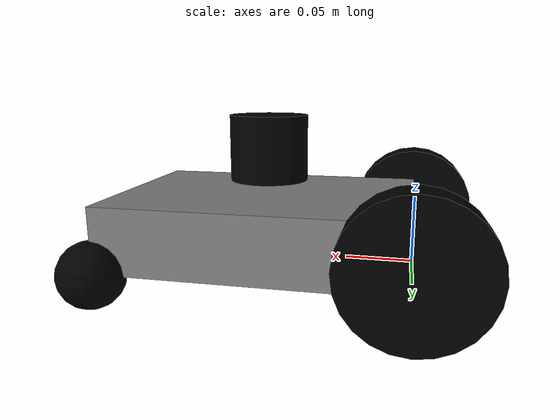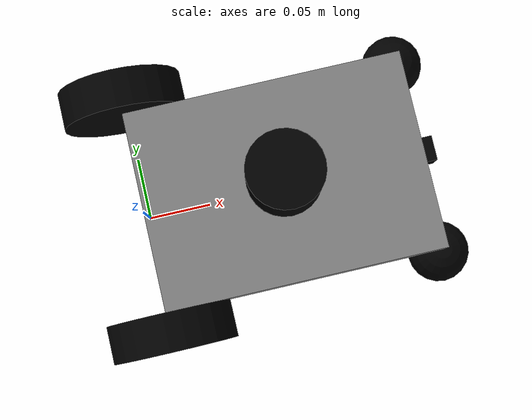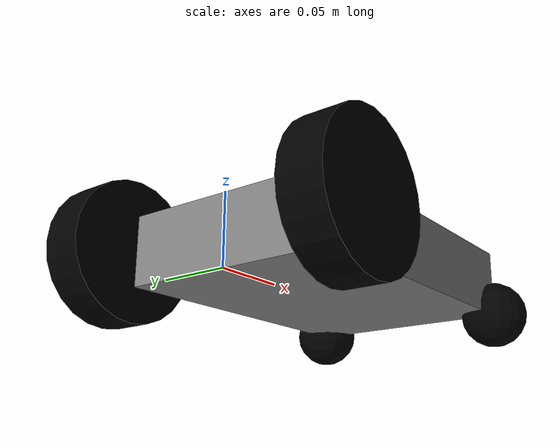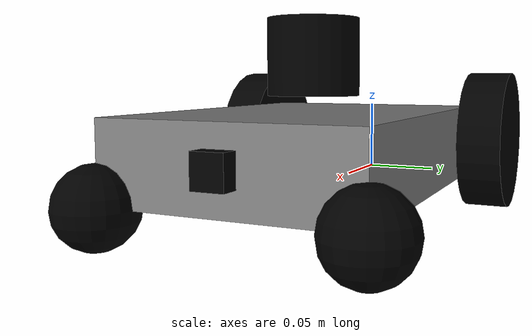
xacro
<?xml version="1.0"?>
<robot xmlns:xacro="http://www.ros.org/wiki/xacro" name="robobase">

<xacro:property name="base_length" default="0.225"/>
<xacro:property name="base_width" default="0.16"/>
<xacro:property name="base_height" default="0.05"/>
<xacro:property name="wheel_radius" default="0.05"/>
<xacro:property name="castor_radius" default="${wheel_radius / 2}"/>
<xacro:property name="wheel_width" default="0.03"/>
<xacro:property name="camera_xyz" default="${base_length / 2 + 0.001} 0 ${base_height / 2 + 0.001}"/>
<xacro:property name="camera_rpy" default="0 0 0"/>
<xacro:property name="camera_parent_link" default="base_link"/>
<xacro:property name="lidar_parent_link" default="base_link"/>
<xacro:property name="lidar_xyz" default="0 0 ${base_height + 0.01 + wheel_radius / 2}"/>
<xacro:property name="lidar_rpy" default="0 0 0"/>
<xacro:property name="wheel_separation" default="${base_width + wheel_width}"/>

<xacro:include filename="$(find robobase_description)/models/bases/rectangular-base.urdf.xacro"/>
<xacro:include filename="$(find robobase_description)/models/sensors/camera.urdf.xacro"/>
<xacro:include filename="$(find robobase_description)/models/sensors/lidar.urdf.xacro"/>
<xacro:include filename="$(find robobase_description)/models/sensors/imu.urdf.xacro"/>

</robot>

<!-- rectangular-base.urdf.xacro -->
<robot xmlns:xacro="http://www.ros.org/wiki/xacro" name="mobile_base">

<xacro:include filename="$(find robobase_description)/models/materials.urdf.xacro"/>
<xacro:include filename="$(find robobase_description)/models/inertia_macros.xacro"/>

<link name="base_footprint">
    <origin xyz="-${base_length / 2} 0 0" rpy="0 0 0"/>
</link>

<!-- Base Link -->
<joint name="base_joint" type="fixed">
    <parent link="base_footprint"/>
    <child link="base_link"/>
    <origin xyz="${base_length / 2} 0 0" rpy="0 0 0"/>
</joint>

<link name="base_link">
    <xacro:inertial_box x="${base_length}" y="${base_width}" z="${base_height}">
        <origin xyz="0 0 ${base_height / 2}" rpy="0 0 0"/>
    </xacro:inertial_box>
    <visual>
        <origin xyz="0 0 ${base_height / 2}" rpy="0 0 0"/>
        <geometry>
            <box size="${base_length} ${base_width} ${base_height}"/>
        </geometry>
        <material name="gray">
            <xacro:gray/>
        </material>
    </visual>
    <collision>
        <origin xyz="0 0 ${base_height / 2}" rpy="0 0 0"/>
        <geometry>
            <box size="${base_length} ${base_width} ${base_height}"/>
        </geometry>
    </collision>
</link>

<!-- Lfwheel Link -->
<joint name="lfwheel_joint" type="continuous">
    <parent link="base_link"/>
    <child link="lfwheel_link"/>
    <origin xyz="${base_length / 2} ${base_width / 2} 0" rpy="0 0 0"/>
</joint>

<link name="lfwheel_link">
    <xacro:inertial_sphere radius="${castor_radius}">
        <origin xyz="0 0 0" rpy="0 0 0"/>
    </xacro:inertial_sphere>
    <visual>
        <origin xyz="0 0 0" rpy="0 0 0"/>
        <geometry>
            <sphere radius="${castor_radius}"/>
        </geometry>
        <material name="black">
            <xacro:black/>
        </material>
    </visual>
    <collision>
        <origin xyz="0 0 0" rpy="0 0 0"/>
        <geometry>
            <sphere radius="${castor_radius}"/>
        </geometry>
    </collision>
</link>
<gazebo reference="lfwheel_link">
  <mu1>0.0</mu1>
  <mu2>0.0</mu2>
  <material>Gazebo/Black</material>
</gazebo>

<!-- Rfwheel Link -->
<joint name="rfwheel_joint" type="continuous">
    <parent link="base_link"/>
    <child link="rfwheel_link"/>
    <origin xyz="${base_length / 2} -${base_width / 2} 0" rpy="0 0 0"/>
</joint>

<link name="rfwheel_link">
    <xacro:inertial_sphere radius="${castor_radius}">
        <origin xyz="0 0 0" rpy="0 0 0"/>
    </xacro:inertial_sphere>
    <visual>
        <origin xyz="0 0 0" rpy="0 0 0"/>
        <geometry>
            <sphere radius="${castor_radius}"/>
        </geometry>
        <material name="black">
            <xacro:black/>
        </material>
    </visual>
    <collision>
        <origin xyz="0 0 0" rpy="0 0 0"/>
        <geometry>
            <sphere radius="${castor_radius}"/>
        </geometry>
    </collision>
</link>
<gazebo reference="rfwheel_link">
  <mu1>0.0</mu1>
  <mu2>0.0</mu2>
  <material>Gazebo/Black</material>
</gazebo>

<!-- Lbwheel Link -->
<joint name="lbwheel_joint" type="continuous">
    <parent link="base_link"/>
    <child link="lbwheel_link"/>
    <origin xyz="-${base_length / 2} ${base_width / 2} ${base_height / 2}" rpy="-${pi / 2} 0 0"/>
    <axis xyz="0 0 1"/>
    <limit effort="1000" velocity="1000"/>
    <dynamics damping="1.0" friction="1.0"/>
</joint>

<link name="lbwheel_link">
    <xacro:inertial_cylinder radius="${wheel_radius}" length="${wheel_width}">
        <origin xyz="0 0 ${wheel_width / 2}" rpy="0 0 0"/>
    </xacro:inertial_cylinder>
    <visual>
        <origin xyz="0 0 ${wheel_width / 2}" rpy="0 0 0"/>
        <geometry>
            <cylinder radius="${wheel_radius}" length="${wheel_width}"/>
        </geometry>
        <material name="black">
            <xacro:black/>
        </material>
    </visual>
    <collision>
        <origin xyz="0 0 ${wheel_width / 2}" rpy="0 0 0"/>
        <geometry>
            <cylinder radius="${wheel_radius}" length="${wheel_width}"/>
        </geometry>
    </collision>
</link>
<gazebo reference="lbwheel_link">
  <mu1>3.0</mu1>
  <mu2>3.0</mu2>
  <material>Gazebo/Black</material>
</gazebo>

<!-- Rbwheel Link -->
<joint name="rbwheel_joint" type="continuous">
    <parent link="base_link"/>
    <child link="rbwheel_link"/>
    <origin xyz="-${base_length / 2} -${base_width / 2} ${base_height / 2}" rpy="${pi / 2} 0 0"/>
    <axis xyz="0 0 -1"/>
    <limit effort="1000" velocity="1000"/>
    <dynamics damping="1.0" friction="1.0"/>
</joint>

<link name="rbwheel_link">
    <xacro:inertial_cylinder radius="${wheel_radius}" length="${wheel_width}">
        <origin xyz="0 0 ${wheel_width / 2}" rpy="0 0 0"/>
    </xacro:inertial_cylinder>
    <visual>
        <origin xyz="0 0 ${wheel_width / 2}" rpy="0 0 0"/>
        <geometry>
            <cylinder radius="${wheel_radius}" length="${wheel_width}"/>
        </geometry>
        <material name="black">
            <xacro:black/>
        </material>
    </visual>
    <collision>
        <origin xyz="0 0 ${wheel_width / 2}" rpy="0 0 0"/>
        <geometry>
            <cylinder radius="${wheel_radius}" length="${wheel_width}"/>
        </geometry>
    </collision>
</link>
<gazebo reference="rbwheel_link">
  <mu1>3.0</mu1>
  <mu2>3.0</mu2>
  <material>Gazebo/Black</material>
</gazebo>

<gazebo>
  <plugin filename="libgz_ros2_control-system.so" name="gz_ros2_control::GazeboSimROS2ControlPlugin">
    <parameters>/root/robows/src/robobase/mobilerobo/config/controllers.yaml</parameters>
  </plugin>
</gazebo>

<ros2_control name="GazeboSystem" type="system">
    <hardware>
        <plugin>gz_ros2_control/GazeboSimSystem</plugin>
    </hardware>
    <joint name="lfwheel_joint">
        <state_interface name="position"/>
        <state_interface name="velocity"/>
    </joint>
    <joint name="rfwheel_joint">
        <state_interface name="position"/>
        <state_interface name="velocity"/>
    </joint>
    <joint name="lbwheel_joint">
        <command_interface name="velocity">
        <param name="min">-100</param>
        <param name="max">100</param>
        </command_interface>
        <state_interface name="position"/>
        <state_interface name="velocity"/>
    </joint>
    <joint name="rbwheel_joint">
        <command_interface name="velocity">
        <param name="min">-100</param>
        <param name="max">100</param>
        </command_interface>
        <state_interface name="position"/>
        <state_interface name="velocity"/>
    </joint>
</ros2_control>

</robot>

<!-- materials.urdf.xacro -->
<robot xmlns:xacro="http://www.ros.org/wiki/xacro">

  <!-- Red color -->
  <xacro:macro name="red">
    <color rgba="1.0 0.0 0.0 1.0"/>
  </xacro:macro>

  <!-- Green color -->
  <xacro:macro name="green">
    <color rgba="0.0 1.0 0.0 1.0"/>
  </xacro:macro>

  <!-- Blue color -->
  <xacro:macro name="blue">
    <color rgba="0.0 0.0 1.0 1.0"/>
  </xacro:macro>

  <!-- White color -->
  <xacro:macro name="white">
    <color rgba="1.0 1.0 1.0 1.0"/>
  </xacro:macro>

  <!-- Black color -->
  <xacro:macro name="black">
    <color rgba="0.0 0.0 0.0 1.0"/>
  </xacro:macro>

  <!-- Gray color -->
  <xacro:macro name="gray">
    <color rgba="0.5 0.5 0.5 1.0"/>
  </xacro:macro>

  <!-- Light Gray color -->
  <xacro:macro name="light_gray">
    <color rgba="0.75 0.75 0.75 1.0"/>
  </xacro:macro>

  <!-- Silver color -->
  <xacro:macro name="silver">
    <color rgba="0.75 0.75 0.75 1.0"/>
  </xacro:macro>

  <!-- Orange color -->
  <xacro:macro name="orange">
    <color rgba="1.0 0.5 0.0 1.0"/>
  </xacro:macro>

  <!-- Yellow color -->
  <xacro:macro name="yellow">
    <color rgba="1.0 1.0 0.0 1.0"/>
  </xacro:macro>

  <!-- Cyan color -->
  <xacro:macro name="cyan">
    <color rgba="0.0 1.0 1.0 1.0"/>
  </xacro:macro>

  <!-- Magenta color -->
  <xacro:macro name="magenta">
    <color rgba="1.0 0.0 1.0 1.0"/>
  </xacro:macro>

  <!-- Purple color -->
  <xacro:macro name="purple">
    <color rgba="0.5 0.0 0.5 1.0"/>
  </xacro:macro>

  <!-- Brown color -->
  <xacro:macro name="brown">
    <color rgba="0.6 0.4 0.2 1.0"/>
  </xacro:macro>

</robot>

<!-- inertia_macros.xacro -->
<robot xmlns:xacro="http://ros.org/wiki/xacro">
  <!-- Default density (kg/m^3) -->
  <xacro:property name="default_density" value="27"/>

  <!-- Inertial for a box (URDF axes aligned, origin at box center) -->
  <!-- If mass not provided, computed as density * x * y * z -->
  <xacro:macro name="inertial_box" params="x y z mass:='' density:=${default_density} *origin">
    <xacro:if value="${mass == ''}">
      <xacro:property name="_ibox_mass" value="${density * x * y * z}"/>
    </xacro:if>
    <xacro:if value="${mass != ''}">
      <xacro:property name="_ibox_mass" value="${mass}"/>
    </xacro:if>
    <inertial>
      <xacro:insert_block name="origin"/>
      <mass value="${_ibox_mass}"/>
      <inertia
        ixx="${(1/12.0) * _ibox_mass * (y*y + z*z)}" ixy="0" ixz="0"
        iyy="${(1/12.0) * _ibox_mass * (x*x + z*z)}" iyz="0"
        izz="${(1/12.0) * _ibox_mass * (x*x + y*y)}"/>
    </inertial>
  </xacro:macro>

  <!-- Inertial for a solid cylinder whose axis is the URDF Z axis -->
  <!-- If mass not provided, computed as density * pi * r^2 * length -->
  <xacro:macro name="inertial_cylinder" params="radius length mass:='' density:=${default_density} *origin">
    <xacro:if value="${mass == ''}">
      <xacro:property name="_icyl_mass" value="${density * 3.141592653589793 * radius * radius * length}"/>
    </xacro:if>
    <xacro:if value="${mass != ''}">
      <xacro:property name="_icyl_mass" value="${mass}"/>
    </xacro:if>
    <inertial>
      <xacro:insert_block name="origin"/>
      <mass value="${_icyl_mass}"/>
      <inertia
        ixx="${(1/12.0) * _icyl_mass * (3*radius*radius + length*length)}" ixy="0" ixz="0"
        iyy="${(1/12.0) * _icyl_mass * (3*radius*radius + length*length)}" iyz="0"
        izz="${0.5 * _icyl_mass * radius * radius}"/>
    </inertial>
  </xacro:macro>

  <!-- Inertial for a solid sphere -->
  <!-- If mass not provided, computed as density * (4/3) * pi * r^3 -->
  <xacro:macro name="inertial_sphere" params="radius mass:='' density:=${default_density} *origin">
    <xacro:if value="${mass == ''}">
      <xacro:property name="_isphere_mass" value="${density * (4.0/3.0) * 3.141592653589793 * radius * radius * radius}"/>
    </xacro:if>
    <xacro:if value="${mass != ''}">
      <xacro:property name="_isphere_mass" value="${mass}"/>
    </xacro:if>
    <inertial>
      <xacro:insert_block name="origin"/>
      <mass value="${_isphere_mass}"/>
      <inertia
        ixx="${(2.0/5.0) * _isphere_mass * radius * radius}" ixy="0" ixz="0"
        iyy="${(2.0/5.0) * _isphere_mass * radius * radius}" iyz="0"
        izz="${(2.0/5.0) * _isphere_mass * radius * radius}"/>
    </inertial>
  </xacro:macro>
</robot>

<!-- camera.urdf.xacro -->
<robot xmlns:xacro="http://ros.org/wiki/xacro">

  <!-- Camera joint (fixed to parent, e.g., base_link) -->
  <joint name="camera_joint" type="fixed">
    <parent link="${camera_parent_link}"/>
    <child link="camera_link"/>
    <origin xyz="${camera_xyz}" rpy="${camera_rpy}"/>
  </joint>

  <!-- Camera link -->
  <link name="camera_link">
    <visual>
      <geometry>
        <box size="0.02 0.02 0.02"/>
      </geometry>
      <material name="black"/>
    </visual>
    <collision>
      <geometry>
        <box size="0.02 0.02 0.02"/>
      </geometry>
    </collision>
    <inertial>
      <mass value="0.1"/>
      <inertia ixx="0.0001" ixy="0.0" ixz="0.0"
               iyy="0.0001" iyz="0.0"
               izz="0.0001"/>
    </inertial>
  </link>

  <!-- Example sensor tag (optional, can be removed or customized) -->
  <gazebo reference="camera_link">
    <sensor name="camera_sensor" type="camera">
      <camera>
        <horizontal_fov>1.047</horizontal_fov>
        <image>
          <width>640</width>
          <height>480</height>
          <format>R8G8B8</format>
        </image>
        <clip>
          <near>0.1</near>
          <far>100</far>
        </clip>
        <!-- Add camera_info_topic for ROS info -->
        <camera_info_topic>camera/camera_info</camera_info_topic>
      </camera>
      <always_on>1</always_on>
      <update_rate>30</update_rate>
      <visualize>true</visualize>
      <topic>camera/image_raw</topic>
      <gz_frame_id>camera_link</gz_frame_id> <!-- Frame id for ROS -->
    </sensor>
  </gazebo>

<gazebo>
    <plugin filename="gz-sim-sensors-system" name="gz::sim::systems::Sensors">
        <render_engine>ogre2</render_engine>
    </plugin>
</gazebo>

</robot>

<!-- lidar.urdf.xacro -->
<robot xmlns:xacro="http://ros.org/wiki/xacro">

  <!-- Lidar joint -->
  <joint name="lidar_joint" type="fixed">
    <parent link="${lidar_parent_link}"/>
    <child link="lidar_link"/>
    <origin xyz="${lidar_xyz}" rpy="${lidar_rpy}"/>
  </joint>

  <!-- Lidar link (simple cylinder visual/collision) -->
  <link name="lidar_link">
    <visual>
      <origin xyz="0 0 0" rpy="0 0 0"/>
      <geometry>
        <cylinder radius="0.03" length="${wheel_radius}"/>
      </geometry>
      <material name="black">
        <color rgba="0 0 0 1"/>
      </material>
    </visual>
    <collision>
      <origin xyz="0 0 0" rpy="0 0 0"/>
      <geometry>
        <cylinder radius="0.03" length="${wheel_radius}"/>
      </geometry>
    </collision>
    <inertial>
      <mass value="0.5"/>
      <origin xyz="0 0 0" rpy="0 0 0"/>
      <inertia ixx="0.001" ixy="0" ixz="0" iyy="0.001" iyz="0" izz="0.001"/>
    </inertial>
  </link>

<gazebo reference="lidar_link">
        <sensor name="lidar_sensor" type="gpu_lidar">
        <always_on>true</always_on>
        <visualize>true</visualize>
        <update_rate>10</update_rate>
        <topic>scan</topic>
        <gz_frame_id>lidar_link</gz_frame_id>
        <lidar>
          <scan>
            <horizontal>
              <samples>360</samples>
              <resolution>1.000000</resolution>
              <min_angle>0.000000</min_angle>
              <max_angle>6.280000</max_angle>
            </horizontal>
          </scan>
          <range>
            <min>0.1</min>
            <max>8</max>
            <resolution>0.015000</resolution>
          </range>
          <noise>
            <type>gaussian</type>
            <mean>0.0</mean>
            <stddev>0.01</stddev>
          </noise>
        </lidar>
      </sensor>
</gazebo>

</robot>

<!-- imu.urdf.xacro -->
<robot xmlns:xacro="http://ros.org/wiki/xacro">

<joint name="imu_joint" type="fixed">
    <parent link="base_link"/>
    <child link="imu_link"/>
          <pose>0.05 0 0.05 0 0 0</pose>
      <axis>
        <xyz>0 0 1</xyz>
      </axis>
</joint>

<link name="imu_link"/>

<gazebo>
    <plugin filename="gz-sim-imu-system" name="gz::sim::systems::Imu">
    </plugin>
</gazebo>

    <gazebo reference="imu_link">
        <sensor name="imu_sensor" type="imu">
            <always_on>true</always_on>
            <update_rate>200</update_rate>
            <topic>imu</topic>
            <gz_frame_id>imu_link</gz_frame_id>
            <imu>
            <angular_velocity>
                <x>
                <noise type="gaussian">
                    <mean>0.0</mean>
                    <stddev>2e-4</stddev>
                </noise>
                </x>
                <y>
                <noise type="gaussian">
                    <mean>0.0</mean>
                    <stddev>2e-4</stddev>
                </noise>
                </y>
                <z>
                <noise type="gaussian">
                    <mean>0.0</mean>
                    <stddev>2e-4</stddev>
                </noise>
                </z>
            </angular_velocity>
            <linear_acceleration>
                <x>
                <noise type="gaussian">
                    <mean>0.0</mean>
                    <stddev>1.7e-2</stddev>
                </noise>
                </x>
                <y>
                <noise type="gaussian">
                    <mean>0.0</mean>
                    <stddev>1.7e-2</stddev>
                </noise>
                </y>
                <z>
                <noise type="gaussian">
                    <mean>0.0</mean>
                    <stddev>1.7e-2</stddev>
                </noise>
                </z>
            </linear_acceleration>
            </imu>
        </sensor>
    </gazebo>

</robot>
